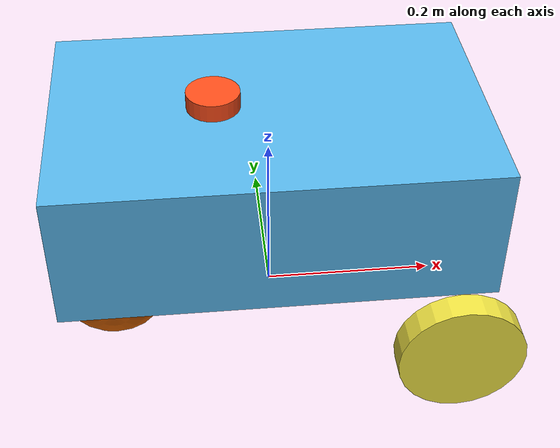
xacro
<?xml version="1.0"?>

<robot name="robot" xmlns:xacro="http://www.ros.org/wiki/xacro">

    <!--  Colores -->

    <material name="white">
        <color rgba="1 1 1 1" />
    </material>

    <material name="orange">
        <color rgba="1 0.3 0.1 1"/>
    </material>

    <material name="blue">
        <color rgba="0.2 0.2 1 1"/>
    </material>

    <material name="black">
        <color rgba="0 0 0 1"/>
    </material>

    <material name="red">
        <color rgba="1 0 0 1"/>
    </material>

    <link name="base_footprint"/>

    <link name="base_link">
        <visual>
            <origin xyz="0 0 0.08"/>
            <geometry>
                <box size="0.48 0.31 0.16"/>
            </geometry>
        </visual>
        <collision>
            <origin xyz="0 0 0.08"/>
            <geometry>
                <box size="0.48 0.31 0.16"/>
            </geometry>
        </collision>
    </link>

    <!--  Joint Base FootPrint - Base Link -->

    <joint name="base_joint" type="fixed">
        <parent link="base_footprint"/>
        <child link="base_link"/>
        <origin xyz="0 0 0.10"/>
    </joint>
        <!-- Laser -->
    <link name="laser">
        <visual>
            <origin xyz="0 0 0" rpy="3.14 0 0"/>
            <geometry>
                <cylinder radius="0.03" length="0.04"/>
            </geometry>
            <material name="orange"/>
        </visual>
        <collision>
            <origin xyz="0 0 0" rpy= "3.14 0 0"/>
            <geometry>
                <cylinder radius="0.03" length="0.04"/>
            </geometry>
        </collision>
    </link>

        <!--  Joint Laser-Base Link -->

    <joint name="base_scan_joint" type="fixed">
        <parent link="base_link"/>
        <child link="laser"/>
        <origin xyz="-0.06 0 0.16" rpy="0 0 0"/>
    </joint>

    <!-- Rueda Derecha -->

    <link name="right_wheel">
        <visual>
            <origin xyz="0 0 0" rpy="1.57 0 0"/>
            <geometry>
                <cylinder radius="0.07" length="0.03"/>
            </geometry>
        </visual>
        <collision>
            <origin xyz="0 0 0" rpy="1.57 0 0"/>
            <geometry>
                <cylinder radius="0.07" length="0.03"/>
            </geometry>
        </collision>
    </link>
 <!-- Joint con Rueda Derecha -->

    <joint name="right_wheel_joint" type="continuous">
        <parent link="base_link"/>
        <child link="right_wheel"/>
        <origin xyz="0.19 -0.20 -0.04" rpy="0 0 0"/>
        <axis xyz="0 1 0"/>
    </joint>

    <!-- Rueda Izquierda -->

    <link name="left_wheel">
        <visual>
            <origin xyz="0 0 0" rpy="-1.57 0 0"/>
            <geometry>
                <cylinder radius="0.07" length="0.03"/>
            </geometry>
        </visual>
        <collision>
            <origin xyz="0 0 0" rpy="-1.57 0 0"/>
            <geometry>
                <cylinder radius="0.07" length="0.03"/>
            </geometry>
        </collision>
    </link>

        <!-- Joint con Rueda Izquierda -->

    <joint name="left_wheel_joint" type="continuous">
        <parent link="base_link"/>
        <child link="left_wheel"/>
        <origin xyz="0.19 0.20 -0.04" rpy="0 0 0"/>
        <axis xyz="0 1 0"/>
    </joint>
<!-- Rueda Loca  -->

    <link name="caster_wheel_link">
        <visual>
            <origin xyz="0 0 0" rpy="1.57 0 0"/>
            <geometry>
                <sphere radius="0.07"/>
            </geometry>
        </visual>
        <collision>
            <origin xyz="0 0 0" rpy="1.57 0 0"/>
            <geometry>
                <sphere radius="0.07"/>
            </geometry>
        </collision>
    </link>

        <!-- Joint con Rueda Loca -->
    <joint name="wheel_caster_joint" type="fixed">
        <parent link="base_link"/>
        <child link="caster_wheel_link"/>
        <origin xyz="-0.19 0 -0.08"/>
    </joint>

</robot>
